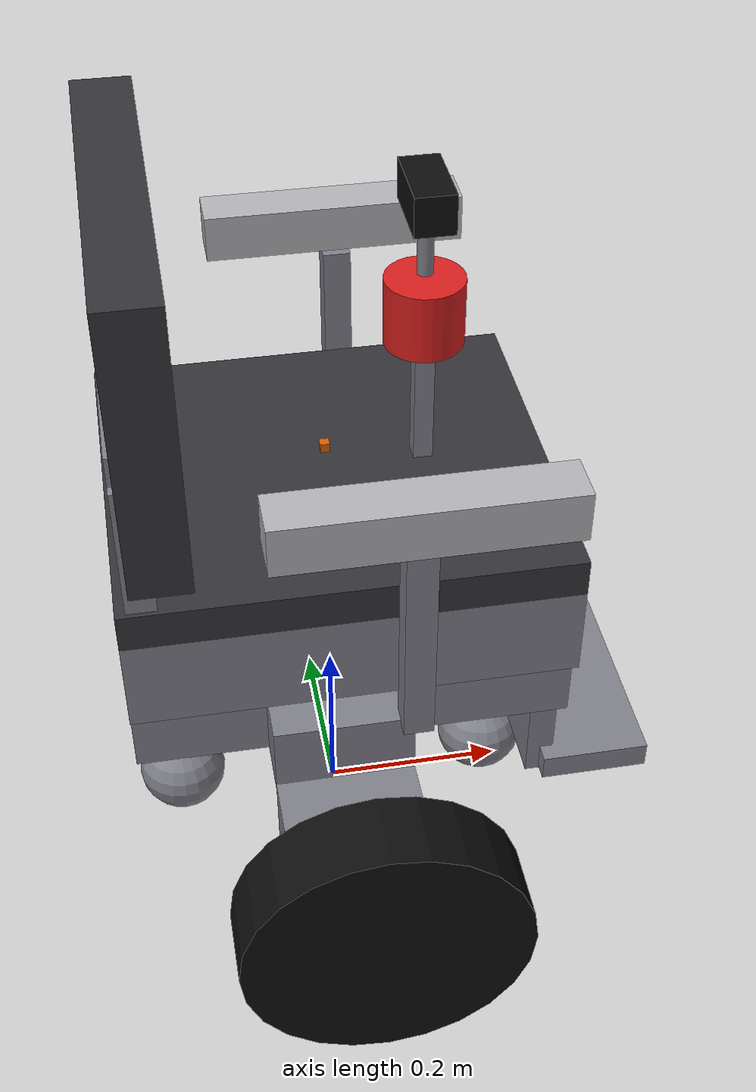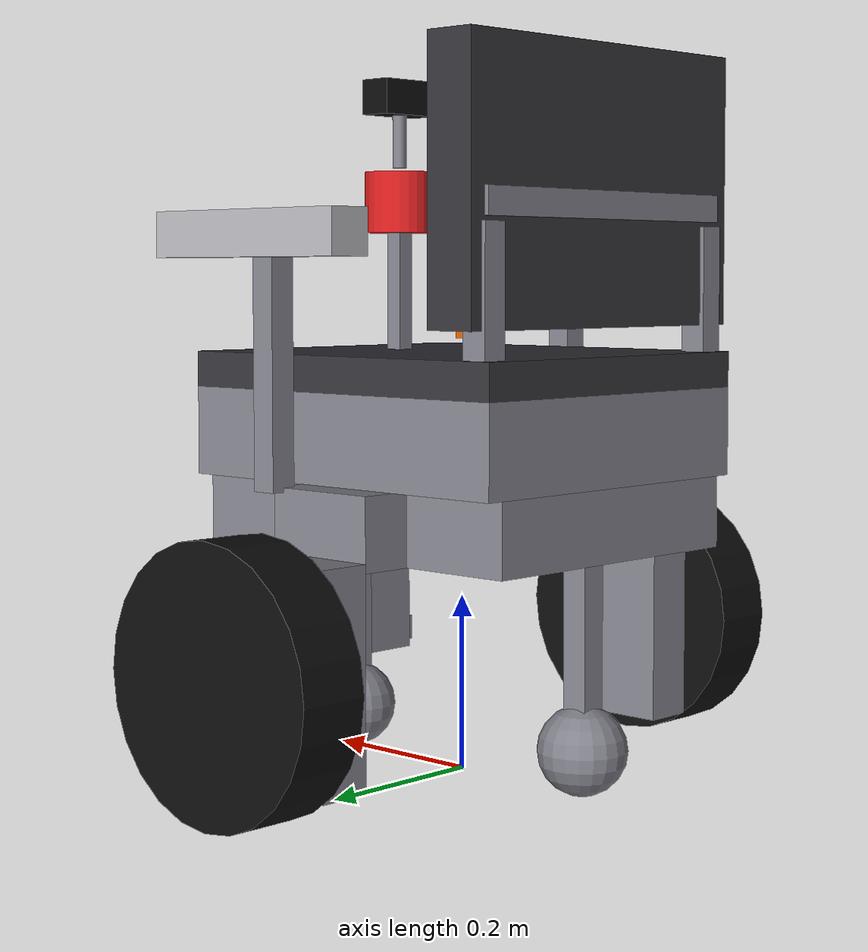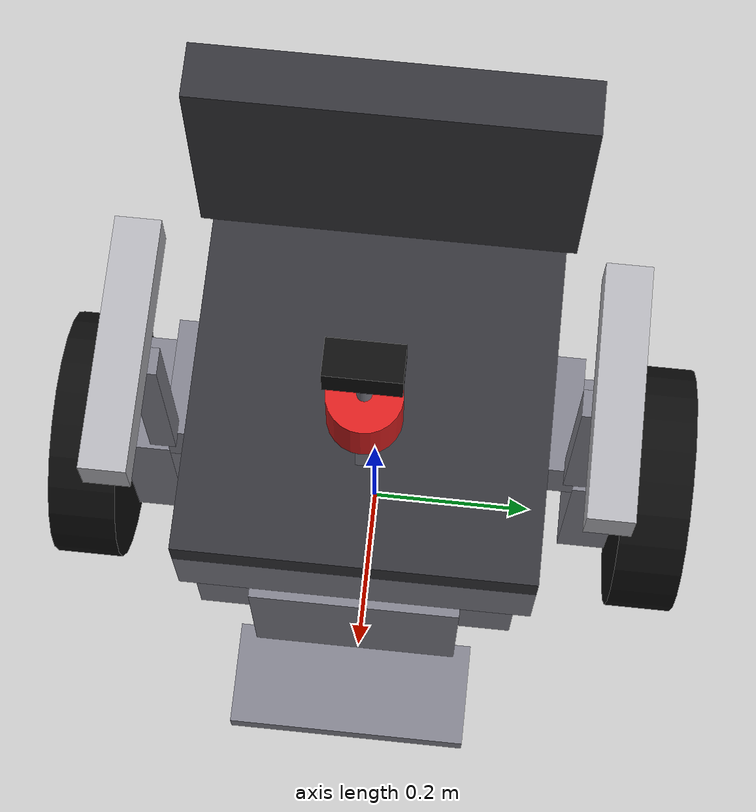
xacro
<?xml version="1.0"?>
<robot xmlns:xacro="http://www.ros.org/wiki/xacro" name="smart_wheelchair">

  <xacro:property name="PI" value="3.14159265359"/>
  <xacro:property name="base_z" value="0.50"/>

  <xacro:property name="wh_r" value="0.15"/>
  <xacro:property name="wh_w" value="0.08"/>
  <xacro:property name="wh_y" value="0.34"/>
  <xacro:property name="wh_z" value="-0.35"/>

  <xacro:property name="ca_r" value="0.05"/>
  <xacro:property name="ca_x" value="0.18"/>
  <xacro:property name="ca_z" value="-0.45"/> <!-- 对齐高度：底部在 -0.50 -->

  <!-- 颜色 -->
  <material name="dark_grey"><color rgba="0.20 0.20 0.22 1.0"/></material>
  <material name="light_grey"><color rgba="0.70 0.70 0.72 1.0"/></material>
  <material name="metal"><color rgba="0.50 0.50 0.54 1.0"/></material>
  <material name="black"><color rgba="0.05 0.05 0.05 1.0"/></material>
  <material name="red"><color rgba="0.85 0.12 0.12 1.0"/></material>

  <!-- ================== base_footprint ================== -->
  <link name="base_footprint"/>

  <joint name="base_joint" type="fixed">
    <parent link="base_footprint"/>
    <child link="base_link"/>
    <origin xyz="0 0 ${base_z}" rpy="0 0 0"/>
  </joint>

  <!-- ================== base_link (骨架 + 座椅一体化) ================== -->
  <link name="base_link">
    <!-- A. 底盘主框架 -->
    <visual>
      <origin xyz="0 0 -0.20" rpy="0 0 0"/>
      <geometry><box size="0.45 0.36 0.08"/></geometry>
      <material name="metal"/>
    </visual>
    <collision>
      <origin xyz="0 0 -0.15" rpy="0 0 0"/>
      <geometry><box size="0.45 0.36 0.04"/></geometry>
    </collision>

    <!-- B. 座面填充板 -->
    <visual>
      <origin xyz="0 0 -0.11" rpy="0 0 0"/>
      <geometry><box size="0.45 0.40 0.10"/></geometry>
      <material name="metal"/>
    </visual>
    <collision>
      <origin xyz="0 0 -0.11" rpy="0 0 0"/>
      <geometry><box size="0.45 0.40 0.05"/></geometry>
    </collision>

    <!-- C. 薄座垫 -->
    <visual>
      <origin xyz="0 0 -0.04" rpy="0 0 0"/>
      <geometry><box size="0.45 0.40 0.04"/></geometry>
      <material name="dark_grey"/>
    </visual>

    <!-- 【新增】P. 左侧主框架连接桥（填补底盘与侧板之间的横向悬空） -->
    <visual>
      <origin xyz="-0.02 0.21 -0.20" rpy="0 0 0"/>
      <geometry><box size="0.14 0.06 0.08"/></geometry>
      <material name="metal"/>
    </visual>
    <collision>
      <origin xyz="-0.02 0.21 -0.15" rpy="0 0 0"/>
      <geometry><box size="0.14 0.06 0.04"/></geometry>
    </collision>

    <!-- 【新增】Q. 右侧主框架连接桥 -->
    <visual>
      <origin xyz="-0.02 -0.21 -0.20" rpy="0 0 0"/>
      <geometry><box size="0.14 0.06 0.08"/></geometry>
      <material name="metal"/>
    </visual>
    <collision>
      <origin xyz="-0.02 -0.21 -0.15" rpy="0 0 0"/>
      <geometry><box size="0.14 0.06 0.04"/></geometry>
    </collision>

    <!-- 【新增】R. 左侧大轮金属驱动轴（连接侧板与大轮中心） -->
    <visual>
      <origin xyz="0 0.30 -0.35" rpy="${PI/2} 0 0"/>
      <geometry><cylinder radius="0.025" length="0.08"/></geometry>
      <material name="metal"/>
    </visual>

    <!-- 【新增】S. 右侧大轮金属驱动轴 -->
    <visual>
      <origin xyz="0 -0.30 -0.35" rpy="${PI/2} 0 0"/>
      <geometry><cylinder radius="0.025" length="0.08"/></geometry>
      <material name="metal"/>
    </visual>

    <!-- D/E/F 靠背结构 -->
    <visual>
      <origin xyz="-0.20 0.18 -0.01" rpy="0 0 0"/>
      <geometry><box size="0.03 0.03 0.26"/></geometry>
      <material name="metal"/>
    </visual>
    <collision>
      <origin xyz="-0.20 0.18 -0.01" rpy="0 0 0"/>
      <geometry><box size="0.03 0.03 0.26"/></geometry>
    </collision>

    <visual>
      <origin xyz="-0.20 -0.18 -0.01" rpy="0 0 0"/>
      <geometry><box size="0.03 0.03 0.26"/></geometry>
      <material name="metal"/>
    </visual>
    <collision>
      <origin xyz="-0.20 -0.18 -0.01" rpy="0 0 0"/>
      <geometry><box size="0.03 0.03 0.26"/></geometry>
    </collision>

    <visual>
      <origin xyz="-0.20 0 0.14" rpy="0 0 0"/>
      <geometry><box size="0.03 0.38 0.03"/></geometry>
      <material name="metal"/>
    </visual>

    <!-- G/H 扶手支撑 -->
    <visual>
      <origin xyz="0.05 0.24 -0.04" rpy="0 0 0"/>
      <geometry><box size="0.03 0.03 0.25"/></geometry>
      <material name="metal"/>
    </visual>
    <collision>
      <origin xyz="0.05 0.24 -0.04" rpy="0 0 0"/>
      <geometry><box size="0.03 0.03 0.25"/></geometry>
    </collision>

    <visual>
      <origin xyz="0.05 -0.24 -0.04" rpy="0 0 0"/>
      <geometry><box size="0.03 0.03 0.25"/></geometry>
      <material name="metal"/>
    </visual>
    <collision>
      <origin xyz="0.05 -0.24 -0.04" rpy="0 0 0"/>
      <geometry><box size="0.03 0.03 0.25"/></geometry>
    </collision>

    <!-- I/J 大轮侧板 -->
    <visual>
      <origin xyz="-0.02 0.27 -0.35" rpy="0 0 0"/>
      <geometry><box size="0.14 0.06 0.24"/></geometry>
      <material name="metal"/>
    </visual>
    <collision>
      <origin xyz="-0.02 0.27 -0.30" rpy="0 0 0"/>
      <geometry><box size="0.14 0.06 0.10"/></geometry>
    </collision>

    <visual>
      <origin xyz="-0.02 -0.27 -0.35" rpy="0 0 0"/>
      <geometry><box size="0.14 0.06 0.24"/></geometry>
      <material name="metal"/>
    </visual>
    <collision>
      <origin xyz="-0.02 -0.27 -0.30" rpy="0 0 0"/>
      <geometry><box size="0.14 0.06 0.10"/></geometry>
    </collision>

    <!-- K/L 脚踏板支撑 -->
    <visual>
      <origin xyz="0.22 0 -0.28" rpy="0 0 0"/>
      <geometry><box size="0.03 0.24 0.24"/></geometry>
      <material name="metal"/>
    </visual>
    <collision>
      <origin xyz="0.22 0 -0.28" rpy="0 0 0"/>
      <geometry><box size="0.03 0.24 0.24"/></geometry>
    </collision>

    <visual>
      <origin xyz="0.28 0 -0.38" rpy="0 0 0"/>
      <geometry><box size="0.10 0.04 0.02"/></geometry>
      <material name="metal"/>
    </visual>
    <collision>
      <origin xyz="0.28 0 -0.38" rpy="0 0 0"/>
      <geometry><box size="0.10 0.04 0.02"/></geometry>
    </collision>

    <!-- M/N 前后万向轮支架 -->
    <visual>
      <origin xyz="0.18 0 -0.345" rpy="0 0 0"/>
      <geometry><box size="0.03 0.03 0.21"/></geometry>
      <material name="metal"/>
    </visual>
    <collision>
      <origin xyz="0.18 0 -0.345" rpy="0 0 0"/>
      <geometry><box size="0.03 0.03 0.21"/></geometry>
    </collision>

    <visual>
      <origin xyz="-0.18 0 -0.345" rpy="0 0 0"/>
      <geometry><box size="0.03 0.03 0.21"/></geometry>
      <material name="metal"/>
    </visual>
    <collision>
      <origin xyz="-0.18 0 -0.345" rpy="0 0 0"/>
      <geometry><box size="0.03 0.03 0.21"/></geometry>
    </collision>

    <!-- O. 雷达立柱 -->
    <visual>
      <origin xyz="0.10 0 -0.01" rpy="0 0 0"/>
      <geometry><box size="0.02 0.02 0.28"/></geometry>
      <material name="metal"/>
    </visual>
    <collision>
      <origin xyz="0.10 0 -0.01" rpy="0 0 0"/>
      <geometry><box size="0.02 0.02 0.28"/></geometry>
    </collision>

    <inertial>
      <origin xyz="0 0 -0.12" rpy="0 0 0"/>
      <mass value="28.0"/>
      <inertia ixx="0.55" ixy="0" ixz="0"
               iyy="0.62" iyz="0"
               izz="0.85"/>
    </inertial>
  </link>

  <!-- ================== 靠背垫 ================== -->
  <link name="backrest_link">
    <visual>
      <geometry><box size="0.06 0.42 0.30"/></geometry>
      <material name="dark_grey"/>
    </visual>
    <collision>
      <geometry><box size="0.06 0.42 0.30"/></geometry>
    </collision>
    <inertial>
      <mass value="3.0"/>
      <inertia ixx="0.03" ixy="0" ixz="0"
               iyy="0.04" iyz="0"
               izz="0.02"/>
    </inertial>
  </link>

  <joint name="backrest_joint" type="fixed">
    <parent link="base_link"/>
    <child link="backrest_link"/>
    <origin xyz="-0.18 0 0.16" rpy="0 0 0"/>
  </joint>

  <!-- ================== 扶手 ================== -->
  <xacro:macro name="armrest" params="prefix reflect">
    <link name="${prefix}_armrest_link">
      <visual>
        <geometry><box size="0.28 0.05 0.05"/></geometry>
        <material name="light_grey"/>
      </visual>
      <collision>
        <geometry><box size="0.28 0.05 0.05"/></geometry>
      </collision>
      <inertial>
        <mass value="1.0"/>
        <inertia ixx="0.008" ixy="0" ixz="0"
                 iyy="0.008" iyz="0"
                 izz="0.008"/>
      </inertial>
    </link>

    <joint name="${prefix}_armrest_joint" type="fixed">
      <parent link="base_link"/>
      <child link="${prefix}_armrest_link"/>
      <origin xyz="0.05 ${reflect*0.26} 0.11" rpy="0 0 0"/>
    </joint>
  </xacro:macro>

  <xacro:armrest prefix="left"  reflect="1"/>
  <xacro:armrest prefix="right" reflect="-1"/>

  <!-- ================== 脚踏板 ================== -->
  <link name="footrest_link">
    <visual>
      <geometry><box size="0.12 0.28 0.03"/></geometry>
      <material name="metal"/>
    </visual>
    <collision>
      <geometry><box size="0.12 0.28 0.03"/></geometry>
    </collision>
    <inertial>
      <mass value="1.0"/>
      <inertia ixx="0.01" ixy="0" ixz="0"
               iyy="0.005" iyz="0"
               izz="0.01"/>
    </inertial>
  </link>

  <joint name="footrest_joint" type="fixed">
    <parent link="base_link"/>
    <child link="footrest_link"/>
    <origin xyz="0.28 0 -0.38" rpy="0 0 0"/>
  </joint>

  <!-- ================== 驱动轮（大后轮） ================== -->
  <xacro:macro name="wheel" params="prefix reflect">
    <link name="${prefix}_wheel_link">
      <visual>
        <origin xyz="0 0 0" rpy="${PI/2} 0 0"/>
        <geometry><cylinder radius="${wh_r}" length="${wh_w}"/></geometry>
        <material name="black"/>
      </visual>
      <collision>
        <origin xyz="0 0 0" rpy="${PI/2} 0 0"/>
        <geometry><cylinder radius="${wh_r}" length="${wh_w}"/></geometry>
      </collision>
      <inertial>
        <origin xyz="0 0 0" rpy="${PI/2} 0 0"/>
        <mass value="2.0"/>
        <inertia ixx="0.015" ixy="0" ixz="0"
                 iyy="0.015" iyz="0"
                 izz="0.0225"/>
      </inertial>
    </link>

    <joint name="${prefix}_wheel_joint" type="continuous">
      <parent link="base_link"/>
      <child link="${prefix}_wheel_link"/>
      <origin xyz="0 ${reflect*wh_y} ${wh_z}" rpy="0 0 0"/>
      <axis xyz="0 1 0"/>
      <!-- 减小 damping 和 friction，防止轮子阻力过大导致空转 -->
      <dynamics damping="0.01" friction="0.01"/>
    </joint>
  </xacro:macro>

  <xacro:wheel prefix="left"  reflect="1"/>
  <xacro:wheel prefix="right" reflect="-1"/>

  <!-- ================== 万向轮 ================== -->
  <xacro:macro name="caster" params="prefix reflect">
    <link name="${prefix}_caster_link">
      <visual>
        <geometry><sphere radius="${ca_r}"/></geometry>
        <material name="metal"/>
      </visual>
      <collision>
        <geometry><sphere radius="${ca_r}"/></geometry>
      </collision>
      <inertial>
        <mass value="0.3"/>
        <inertia ixx="0.00015" ixy="0" ixz="0"
                 iyy="0.00015" iyz="0"
                 izz="0.00015"/>
      </inertial>
    </link>

    <joint name="${prefix}_caster_joint" type="continuous"> <!-- 修改：由 fixed 改为 continuous -->
      <parent link="base_link"/>
      <child link="${prefix}_caster_link"/>
      <origin xyz="${reflect*ca_x} 0 ${ca_z}" rpy="0 0 0"/>
      <axis xyz="1 1 1"/> <!-- 全向自由旋转 -->
      <dynamics damping="0.0" friction="0.0"/>
    </joint>
  </xacro:macro>

  <xacro:caster prefix="front" reflect="1"/>
  <xacro:caster prefix="rear"  reflect="-1"/>

  <!-- ================== 激光雷达与摄像头 ================== -->
  <link name="lidar_link">
    <visual>
      <origin xyz="0 0 0" rpy="0 0 0"/>
      <geometry><cylinder radius="0.04" length="0.07"/></geometry>
      <material name="red"/>
    </visual>
    <visual>
      <origin xyz="0 0 0.08" rpy="0 0 0"/>
      <geometry><cylinder radius="0.008" length="0.08"/></geometry>
      <material name="metal"/>
    </visual>
    <collision>
      <origin xyz="0 0 0" rpy="0 0 0"/>
      <geometry><cylinder radius="0.04" length="0.07"/></geometry>
    </collision>
    <inertial>
      <mass value="0.4"/>
      <inertia ixx="0.0003" ixy="0" ixz="0"
               iyy="0.0003" iyz="0"
               izz="0.0003"/>
    </inertial>
  </link>

  <joint name="lidar_joint" type="fixed">
    <parent link="base_link"/>
    <child link="lidar_link"/>
    <origin xyz="0.10 0 0.15" rpy="0 0 0"/>
  </joint>

  <link name="camera_link">
    <visual>
      <geometry><box size="0.04 0.08 0.04"/></geometry>
      <material name="black"/>
    </visual>
    <collision>
      <geometry><box size="0.04 0.08 0.04"/></geometry>
    </collision>
    <inertial>
      <mass value="0.1"/>
      <inertia ixx="0.00002" ixy="0" ixz="0"
               iyy="0.00002" iyz="0"
               izz="0.00002"/>
    </inertial>
  </link>

  <joint name="camera_joint" type="fixed">
    <parent link="lidar_link"/>
    <child link="camera_link"/>
    <origin xyz="0 0 0.12" rpy="0 0 0"/>
  </joint>

  <!-- ================== 深度相机光学坐标系 ================== -->
  <!-- Gazebo 深度相机插件使用光学坐标系（Z=光轴向前，X=右，Y=下），
       而 camera_link 的 Z 轴向上。添加 optical_frame 使 TF 自动处理旋转，
       避免点云出现在 camera_link 的正上方。 -->
  <link name="camera_depth_optical_frame">
    <inertial>
      <mass value="0.001"/>
      <inertia ixx="0.000001" ixy="0" ixz="0"
               iyy="0.000001" iyz="0"
               izz="0.000001"/>
    </inertial>
  </link>

  <joint name="camera_depth_optical_joint" type="fixed">
    <parent link="camera_link"/>
    <child link="camera_depth_optical_frame"/>
    <!-- 旋转矩阵推导：
         camera_link: X=前, Y=左, Z=上
         optical:     X=右, Y=下, Z=前
         optical_X = -camera_Y, optical_Y = -camera_Z, optical_Z = camera_X
         对应 rpy = (-pi/2, 0, -pi/2) -->
    <origin xyz="0 0 0" rpy="-1.5708 0 -1.5708"/>
  </joint>

  <!-- ================== Gazebo 插件与材质 ================== -->
  <gazebo>
    <plugin name="diff_drive" filename="libgazebo_ros_diff_drive.so">
      <updateRate>100</updateRate>
      <leftJoint>left_wheel_joint</leftJoint>
      <rightJoint>right_wheel_joint</rightJoint>
      <wheelSeparation>0.68</wheelSeparation>
      <wheelDiameter>0.30</wheelDiameter>
      <wheelTorque>10</wheelTorque>
      <commandTopic>cmd_vel</commandTopic>
      <odometryTopic>odom</odometryTopic>
      <odometryFrame>odom</odometryFrame>
      <robotBaseFrame>base_footprint</robotBaseFrame>
      <publishWheelTF>false</publishWheelTF>
      <publishWheelJointState>true</publishWheelJointState>
      <publishOdomTF>true</publishOdomTF>
      <odometrySource>world</odometrySource> <!-- 改回 world 以获得绝对平滑的转向里程计 -->
      <updateRate>50</updateRate>
    </plugin>
  </gazebo>

  <!-- ================== IMU 传感器 ================== -->
  <link name="imu_link">
    <visual>
      <geometry><box size="0.01 0.01 0.01"/></geometry>
    </visual>
    <inertial>
      <mass value="0.01"/>
      <inertia ixx="0.000001" ixy="0" ixz="0" iyy="0.000001" iyz="0" izz="0.000001"/>
    </inertial>
  </link>

  <joint name="imu_joint" type="fixed">
    <parent link="base_link"/>
    <child link="imu_link"/>
    <origin xyz="0 0 0" rpy="0 0 0"/>
  </joint>

  <gazebo reference="imu_link">
    <gravity>true</gravity>
    <sensor name="imu_sensor" type="imu">
      <always_on>true</always_on>
      <update_rate>100</update_rate>
      <visualize>true</visualize>
      <topic>__default_topic__</topic>
      <plugin filename="libgazebo_ros_imu_sensor.so" name="imu_plugin">
        <topicName>imu</topicName>
        <bodyName>imu_link</bodyName>
        <updateRateHZ>100.0</updateRateHZ>
        <gaussianNoise>0.005</gaussianNoise>
        <xyzOffset>0 0 0</xyzOffset>
        <rpyOffset>0 0 0</rpyOffset>
        <frameName>imu_link</frameName>
        <initialOrientationAsReference>false</initialOrientationAsReference>
      </plugin>
      <pose>0 0 0 0 0 0</pose>
    </sensor>
  </gazebo>

  <gazebo reference="lidar_link">
    <sensor type="ray" name="lidar_sensor">
      <pose>0 0 0 0 0 0</pose>
      <visualize>true</visualize>
      <update_rate>40</update_rate>
      <ray>
        <scan>
          <horizontal>
            <samples>360</samples>
            <resolution>1</resolution>
            <min_angle>-2.356</min_angle> <!-- -135度，避开正后方的靠背 -->
            <max_angle>2.356</max_angle>
          </horizontal>
        </scan>
        <range>
          <min>0.10</min>
          <max>10.0</max>
          <resolution>0.01</resolution>
        </range>
      </ray>
      <plugin name="lidar_plugin" filename="libgazebo_ros_laser.so">
        <topicName>scan</topicName>
        <frameName>lidar_link</frameName>
      </plugin>
    </sensor>
  </gazebo>

  <!-- ================== RGB-D 深度摄像头（Kinect 风格） ================== -->
  <gazebo reference="camera_link">
    <sensor type="depth" name="camera_depth_sensor">
      <update_rate>30.0</update_rate>
      <visualize>true</visualize>
      <camera name="camera">
        <horizontal_fov>1.047</horizontal_fov>
        <image>
          <width>640</width>
          <height>480</height>
          <format>R8G8B8</format>
        </image>
        <clip>
          <near>0.05</near>
          <far>10.0</far>
        </clip>
      </camera>
      <plugin name="camera_depth_plugin" filename="libgazebo_ros_openni_kinect.so">
        <baseline>0.1</baseline>
        <alwaysOn>true</alwaysOn>
        <updateRate>30</updateRate>
        <cameraName>camera</cameraName>
        <imageTopicName>rgb/image_raw</imageTopicName>
        <cameraInfoTopicName>rgb/camera_info</cameraInfoTopicName>
        <depthImageTopicName>depth/image_raw</depthImageTopicName>
        <depthImageCameraInfoTopicName>depth/camera_info</depthImageCameraInfoTopicName>
        <pointCloudTopicName>depth/points</pointCloudTopicName>
        <!-- 【修复】frameName 改为 optical_frame，使点云坐标系正确 -->
        <frameName>camera_depth_optical_frame</frameName>
        <distortionK1>0</distortionK1>
        <distortionK2>0</distortionK2>
        <distortionK3>0</distortionK3>
        <distortionT1>0</distortionT1>
        <distortionT2>0</distortionT2>
      </plugin>
    </sensor>
  </gazebo>

  <gazebo reference="base_link">
    <mu1>0.3</mu1>
    <mu2>0.3</mu2>
    <material>Gazebo/Grey</material>
  </gazebo>

  <gazebo reference="left_wheel_link">
    <mu1>2.0</mu1>
    <mu2>2.0</mu2>
    <kp>1000000.0</kp>
    <kd>1.0</kd>
    <material>Gazebo/Black</material>
  </gazebo>

  <gazebo reference="right_wheel_link">
    <mu1>2.0</mu1>
    <mu2>2.0</mu2>
    <kp>1000000.0</kp>
    <kd>1.0</kd>
    <material>Gazebo/Black</material>
  </gazebo>

  <gazebo reference="front_caster_link">
    <mu1>0.0</mu1>
    <mu2>0.0</mu2>
    <material>Gazebo/Grey</material>
  </gazebo>

  <gazebo reference="rear_caster_link">
    <mu1>0.0</mu1>
    <mu2>0.0</mu2>
    <material>Gazebo/Grey</material>
  </gazebo>

</robot>
